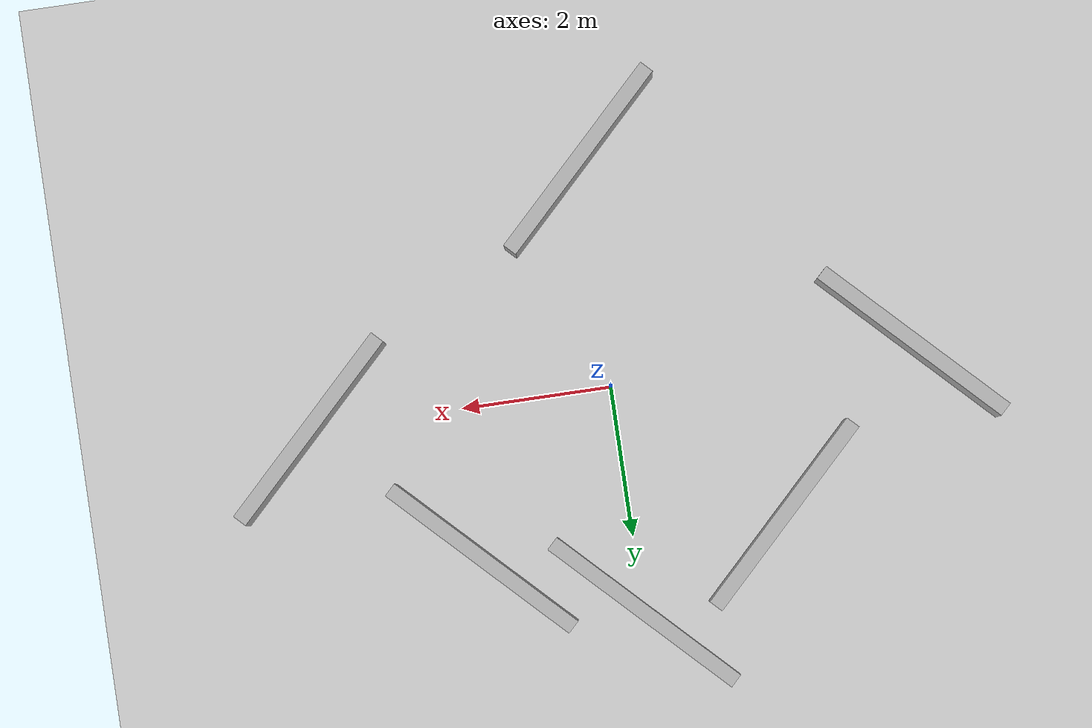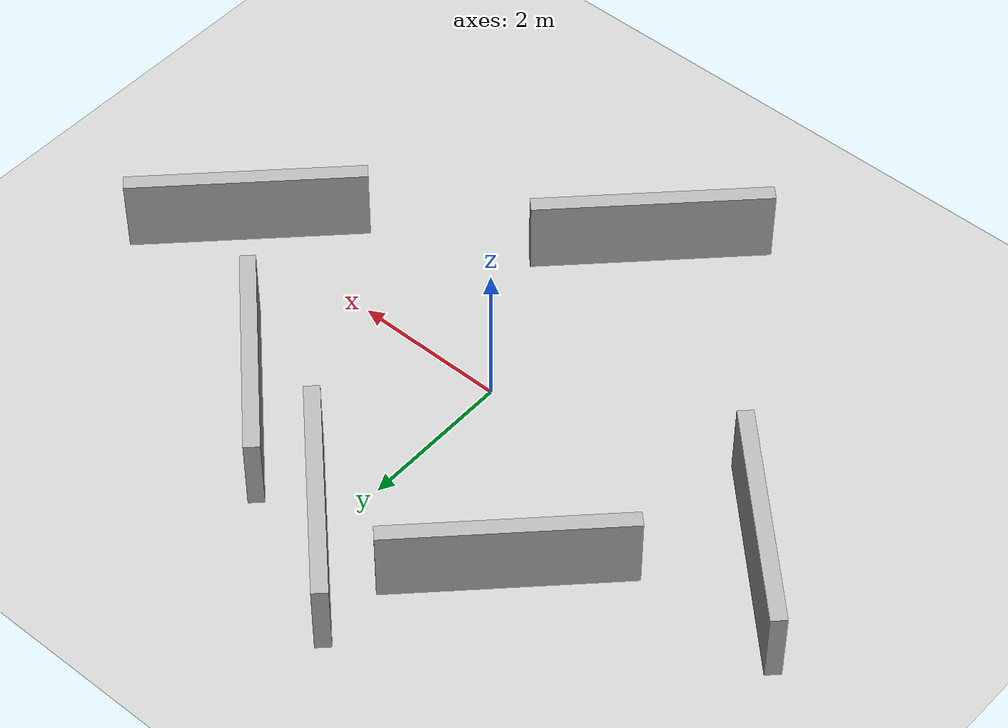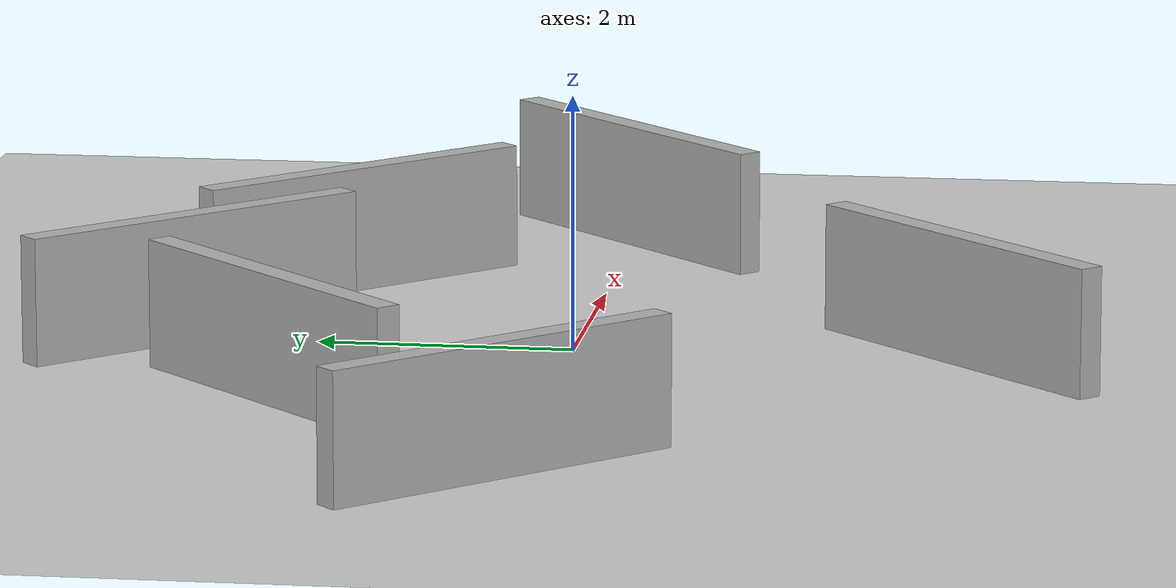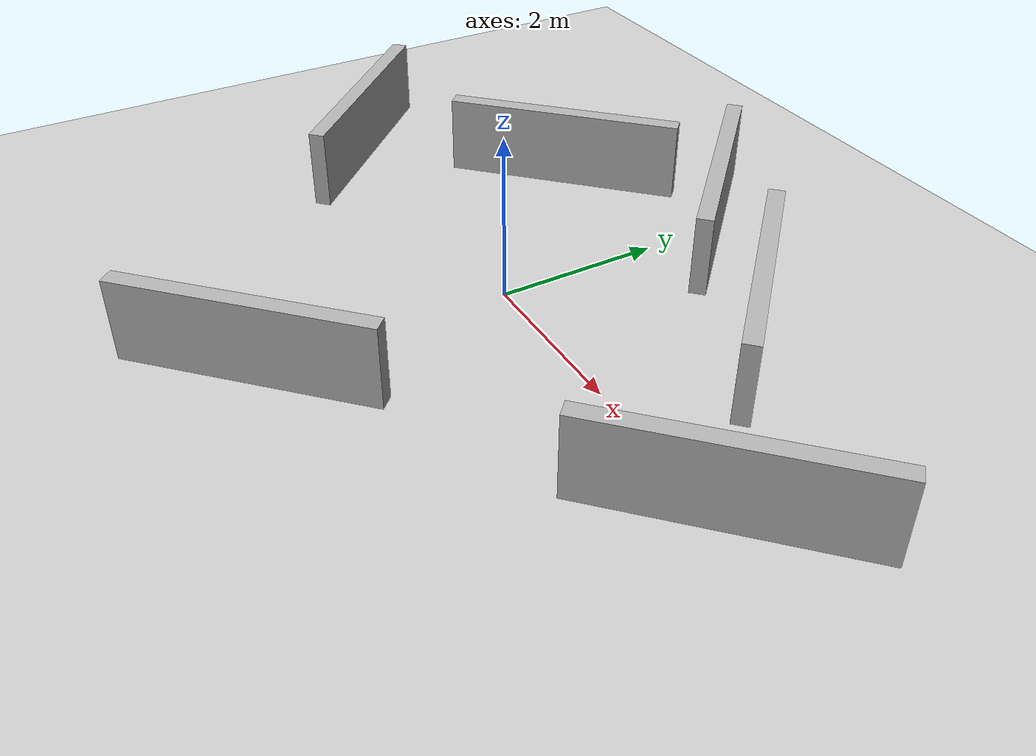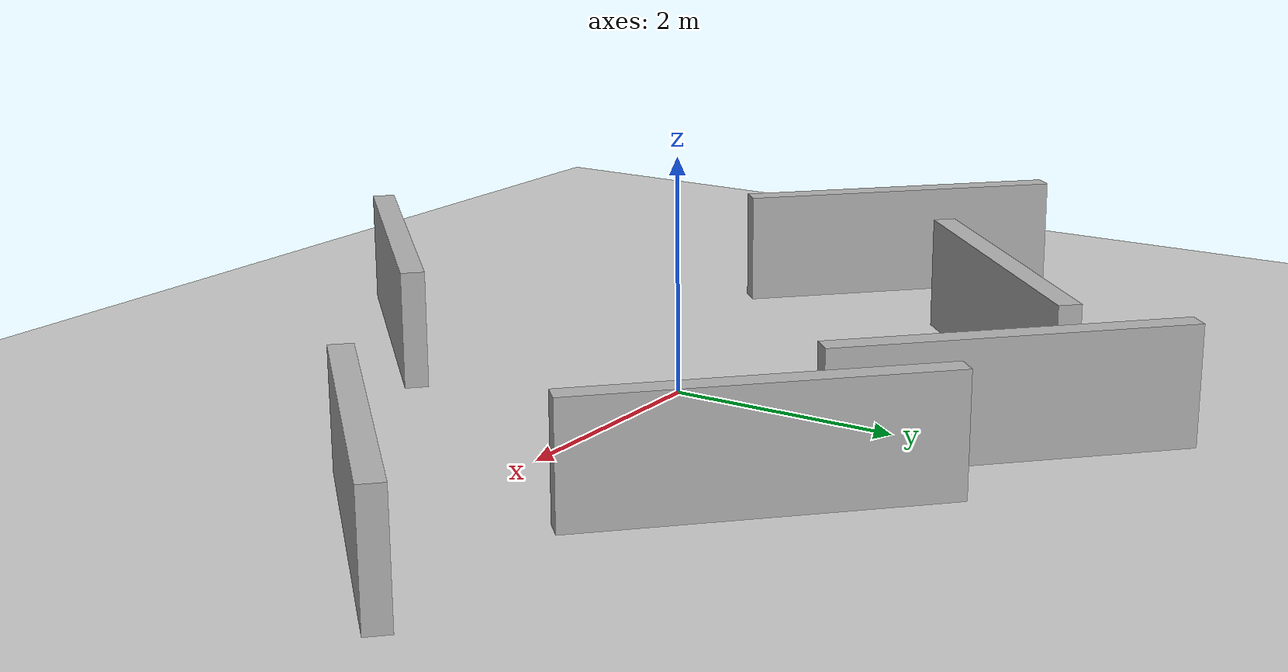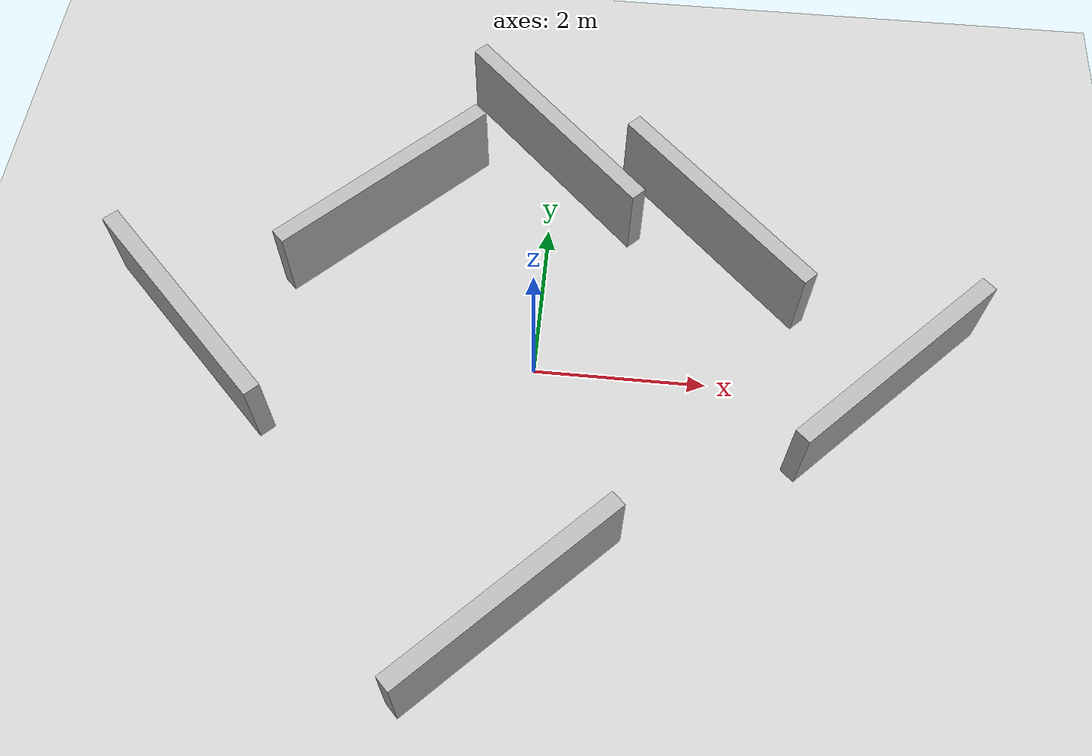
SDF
<?xml version="1.0" ?>
<sdf version="1.10">
  <world name="barriers_world">
    <!-- Sun light -->
    <light name="sun" type="directional">
      <cast_shadows>true</cast_shadows>
      <intensity>1.0</intensity>
      <direction>0.5 0.5 -1</direction>
      <ambient>0.4 0.4 0.4 1</ambient>
      <diffuse>0.8 0.8 0.8 1</diffuse>
      <specular>0.2 0.2 0.2 1</specular>
    </light>

    <!-- Ground plane -->
    <model name="ground_plane">
      <static>true</static>
      <link name="link">
        <collision name="collision">
          <geometry>
            <plane>
              <normal>0 0 1</normal>
              <size>100 100</size>
            </plane>
          </geometry>
        </collision>
        <visual name="visual">
          <geometry>
            <plane>
              <normal>0 0 1</normal>
              <size>100 100</size>
            </plane>
          </geometry>
          <material>
            <ambient>0.8 0.8 0.8 1</ambient>
            <diffuse>0.8 0.8 0.8 1</diffuse>
            <specular>0.2 0.2 0.2 1</specular>
          </material>
        </visual>
      </link>
    </model>

    <!-- Barrier 1: 45 degrees (top-left to bottom-right) -->
    <model name="barrier_1">
      <static>true</static>
      <pose>-2 2 0.5 0 0 0.7854</pose>
      <link name="link">
        <collision name="collision">
          <geometry>
            <box>
              <size>3 0.2 1</size>
            </box>
          </geometry>
        </collision>
        <visual name="visual">
          <geometry>
            <box>
              <size>3 0.2 1</size>
            </box>
          </geometry>
          <material>
            <ambient>0.5 0.5 0.5 1</ambient>
            <diffuse>0.7 0.7 0.7 1</diffuse>
            <specular>0.2 0.2 0.2 1</specular>
          </material>
        </visual>
      </link>
    </model>

    <!-- Barrier 2: 45 degrees (opposite direction) -->
    <model name="barrier_2">
      <static>true</static>
      <pose>2 2 0.5 0 0 -0.7854</pose>
      <link name="link">
        <collision name="collision">
          <geometry>
            <box>
              <size>3 0.2 1</size>
            </box>
          </geometry>
        </collision>
        <visual name="visual">
          <geometry>
            <box>
              <size>3 0.2 1</size>
            </box>
          </geometry>
          <material>
            <ambient>0.5 0.5 0.5 1</ambient>
            <diffuse>0.7 0.7 0.7 1</diffuse>
            <specular>0.2 0.2 0.2 1</specular>
          </material>
        </visual>
      </link>
    </model>

    <!-- Barrier 3: 45 degrees -->
    <model name="barrier_3">
      <static>true</static>
      <pose>0 -3 0.5 0 0 0.7854</pose>
      <link name="link">
        <collision name="collision">
          <geometry>
            <box>
              <size>3 0.2 1</size>
            </box>
          </geometry>
        </collision>
        <visual name="visual">
          <geometry>
            <box>
              <size>3 0.2 1</size>
            </box>
          </geometry>
          <material>
            <ambient>0.5 0.5 0.5 1</ambient>
            <diffuse>0.7 0.7 0.7 1</diffuse>
            <specular>0.2 0.2 0.2 1</specular>
          </material>
        </visual>
      </link>
    </model>

    <!-- Barrier 4: 45 degrees (opposite) -->
    <model name="barrier_4">
      <static>true</static>
      <pose>0 3 0.5 0 0 -0.7854</pose>
      <link name="link">
        <collision name="collision">
          <geometry>
            <box>
              <size>3 0.2 1</size>
            </box>
          </geometry>
        </collision>
        <visual name="visual">
          <geometry>
            <box>
              <size>3 0.2 1</size>
            </box>
          </geometry>
          <material>
            <ambient>0.5 0.5 0.5 1</ambient>
            <diffuse>0.7 0.7 0.7 1</diffuse>
            <specular>0.2 0.2 0.2 1</specular>
          </material>
        </visual>
      </link>
    </model>

    <!-- Barrier 5: 45 degrees -->
    <model name="barrier_5">
      <static>true</static>
      <pose>4 0 0.5 0 0 0.7854</pose>
      <link name="link">
        <collision name="collision">
          <geometry>
            <box>
              <size>3 0.2 1</size>
            </box>
          </geometry>
        </collision>
        <visual name="visual">
          <geometry>
            <box>
              <size>3 0.2 1</size>
            </box>
          </geometry>
          <material>
            <ambient>0.5 0.5 0.5 1</ambient>
            <diffuse>0.7 0.7 0.7 1</diffuse>
            <specular>0.2 0.2 0.2 1</specular>
          </material>
        </visual>
      </link>
    </model>

    <!-- Barrier 6: 45 degrees (opposite) -->
    <model name="barrier_6">
      <static>true</static>
      <pose>-4 0 0.5 0 0 -0.7854</pose>
      <link name="link">
        <collision name="collision">
          <geometry>
            <box>
              <size>3 0.2 1</size>
            </box>
          </geometry>
        </collision>
        <visual name="visual">
          <geometry>
            <box>
              <size>3 0.2 1</size>
            </box>
          </geometry>
          <material>
            <ambient>0.5 0.5 0.5 1</ambient>
            <diffuse>0.7 0.7 0.7 1</diffuse>
            <specular>0.2 0.2 0.2 1</specular>
          </material>
        </visual>
      </link>
    </model>

  </world>
</sdf>
